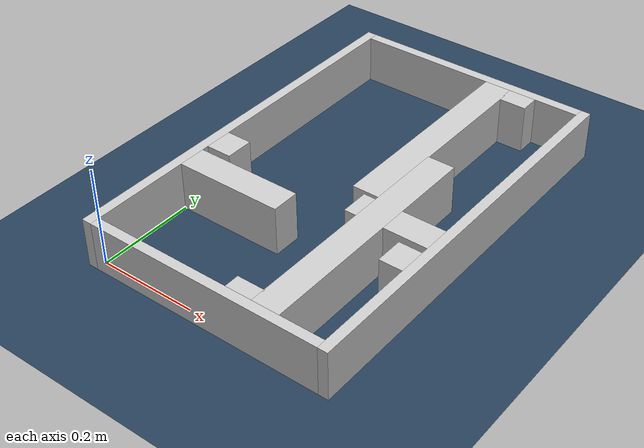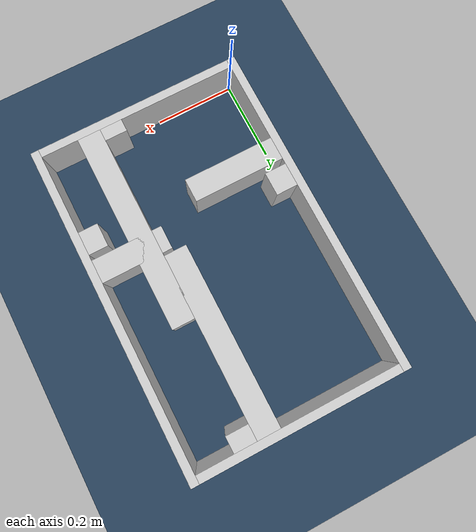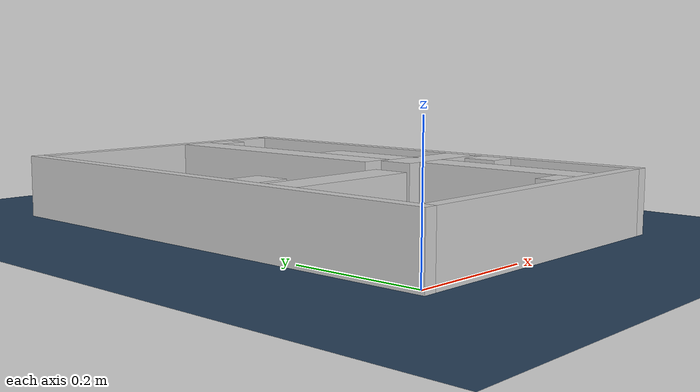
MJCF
<?xml version="1.0" ?>
<mujoco model="generated_real_template">
  <compiler angle="degree"/>
  <option timestep="0.002" integrator="implicitfast" iterations="100" cone="elliptic"/>
  <default>
    <geom density="1"/>
  </default>
  <asset>
    <texture builtin="gradient" height="3072" rgb1="0.3 0.5 0.7" rgb2="0 0 0" type="skybox" width="512"/>
    <texture builtin="checker" height="300" mark="edge" markrgb="0.8 0.8 0.8" name="groundplane" rgb1="0.2 0.3 0.4" rgb2="0.1 0.2 0.3" type="2d" width="300"/>
    <material name="groundplane" reflectance="0.2" texrepeat="5 5" texture="groundplane" texuniform="true"/>
  </asset>
  <worldbody>
    <light dir="0 0 -1" directional="true" pos="0 0 1.5"/>
    <geom name="floor" type="plane" condim="4" friction="0.5 0.005 0.001" material="groundplane" size="0 0 0.05"/>
    <body name="walls">
      <geom name="wall_boundary_left" type="box" condim="4" friction="1.0 0.005 0.0001" rgba="0.8 0.8 0.8 1" pos="-0.010000 0.387500 0.050000" euler="0 0 0.000000" size="0.010000 0.407500 0.050000"/>
      <geom name="wall_boundary_right" type="box" condim="4" friction="1.0 0.005 0.0001" rgba="0.8 0.8 0.8 1" pos="0.500000 0.387500 0.050000" euler="0 0 0.000000" size="0.010000 0.407500 0.050000"/>
      <geom name="wall_boundary_bottom" type="box" condim="4" friction="1.0 0.005 0.0001" rgba="0.8 0.8 0.8 1" pos="0.245000 -0.010000 0.050000" euler="0 0 0.000000" size="0.245000 0.010000 0.050000"/>
      <geom name="wall_boundary_top" type="box" condim="4" friction="1.0 0.005 0.0001" rgba="0.8 0.8 0.8 1" pos="0.245000 0.785000 0.050000" euler="0 0 0.000000" size="0.245000 0.010000 0.050000"/>
      <geom name="wall_inner_1_1" type="box" condim="4" friction="1.0 0.005 0.0001" rgba="0.8 0.8 0.8 1" pos="0.111113 0.227975 0.050000" euler="0 0 0.000000" size="0.111113 0.028500 0.050000"/>
      <geom name="wall_inner_1_2" type="box" condim="4" friction="1.0 0.005 0.0001" rgba="0.8 0.8 0.8 1" pos="0.466328 0.227975 0.050000" euler="0 0 0.000000" size="0.023672 0.028500 0.050000"/>
      <geom name="wall_inner_2_1" type="box" condim="4" friction="1.0 0.005 0.0001" rgba="0.8 0.8 0.8 1" pos="0.316100 0.015342 0.050000" euler="0 0 90.000000" size="0.015342 0.028500 0.050000"/>
      <geom name="wall_inner_2_2" type="box" condim="4" friction="1.0 0.005 0.0001" rgba="0.8 0.8 0.8 1" pos="0.316100 0.554748 0.050000" euler="0 0 90.000000" size="0.220252 0.028500 0.050000"/>
      <geom name="wall_inner_3_1" type="box" condim="4" friction="1.0 0.005 0.0001" rgba="0.8 0.8 0.8 1" pos="0.370936 0.244455 0.050000" euler="0 0 90.000000" size="0.244455 0.028500 0.050000"/>
      <geom name="wall_inner_3_2" type="box" condim="4" friction="1.0 0.005 0.0001" rgba="0.8 0.8 0.8 1" pos="0.370936 0.755169 0.050000" euler="0 0 90.000000" size="0.019831 0.028500 0.050000"/>
      <geom name="wall_inner_4_1" type="box" condim="4" friction="1.0 0.005 0.0001" rgba="0.8 0.8 0.8 1" pos="0.026374 0.298861 0.050000" euler="0 0 0.000000" size="0.026374 0.028500 0.050000"/>
      <geom name="wall_inner_4_2" type="box" condim="4" friction="1.0 0.005 0.0001" rgba="0.8 0.8 0.8 1" pos="0.404006 0.298861 0.050000" euler="0 0 0.000000" size="0.085994 0.028500 0.050000"/>
    </body>
  </worldbody>
</mujoco>
